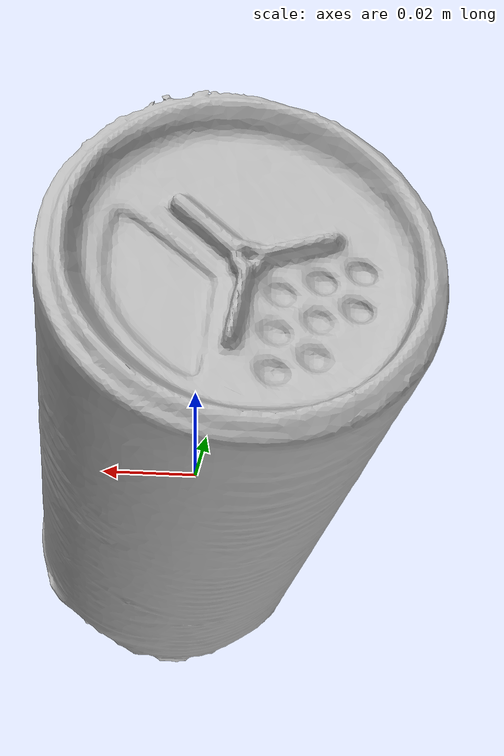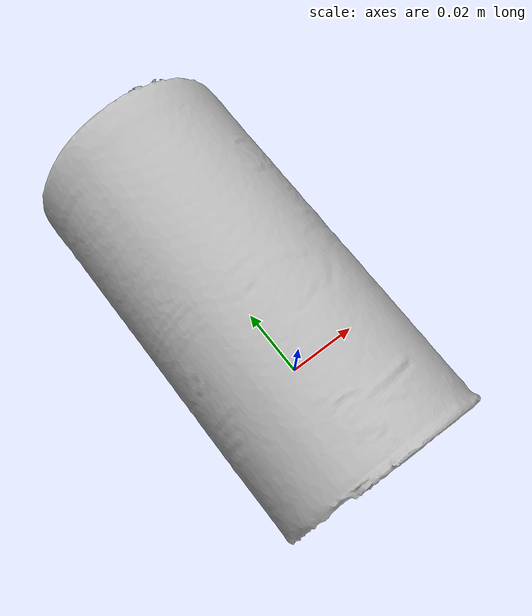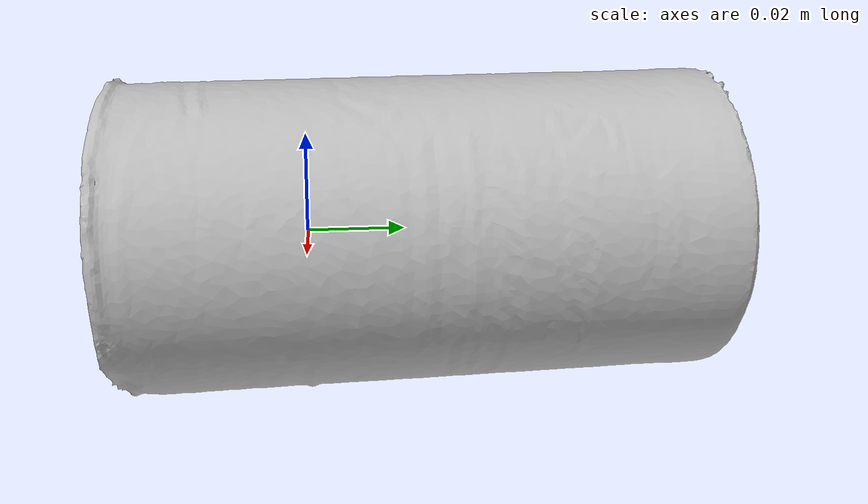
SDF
<?xml version='1.0'?>
<sdf version="1.4">
  <model name="SauceThickener">
    <static>false</static>
    <link name="link">
      <inertial>
        <pose>0.00184346054530757 0.022973922657665905 0.0005899117512432368 1.5888454738061517 0.1371672363413781 0.009603604532684886</pose>
        <mass>0.03714403302862563</mass>
        <inertia>
          <ixx>5.3710003206688874e-05</ixx>
          <ixy>-1.8192117574777992e-21</ixy>
          <ixz>-9.807024822387246e-22</ixz>
          <iyy>5.3665865117478816e-05</iyy>
          <iyz>9.303735480574095e-22</iyz>
          <izz>1.8248291489596405e-05</izz>
        </inertia>
      </inertial>
      <collision name="collision">
        <geometry>
          <mesh>
            <!-- Use a downsampled mesh for collisions -->
            <uri>model:///SauceThickener/SauceThickener_250_collision.obj</uri>
	        </mesh>
        </geometry>
        <surface>
      </surface>
      </collision>
      <visual name="visual">
        <geometry>
          <mesh>
            <uri>model:///SauceThickener/SauceThickener_25k_tex.obj</uri>
	        </mesh>
        </geometry>
        <material>
          <script>
            <uri>model:///SauceThickener/SauceThickener.material</uri>
            <name>SauceThickener</name>
          </script>
        </material>
      </visual>
    </link>
  </model>
</sdf>
